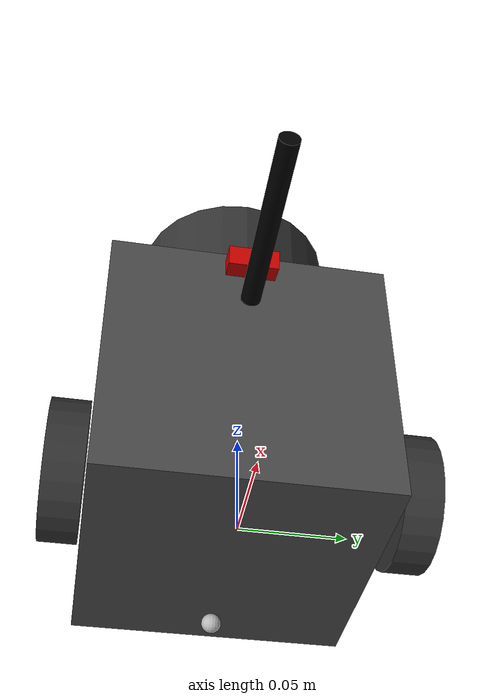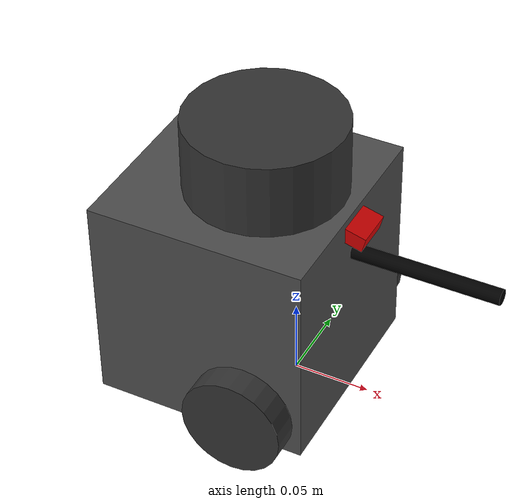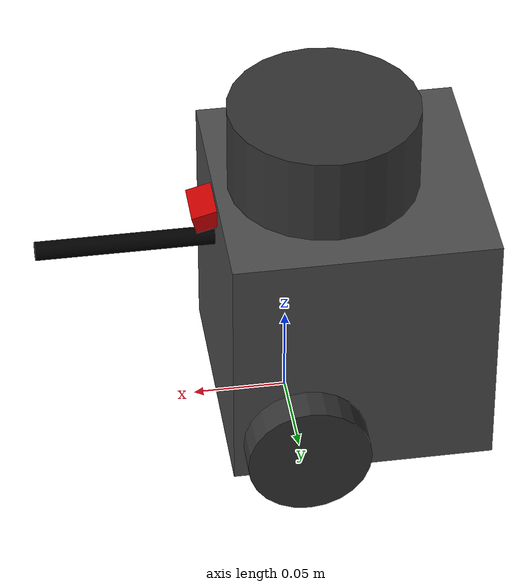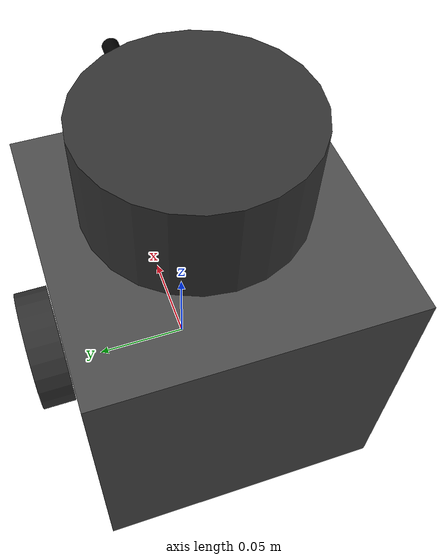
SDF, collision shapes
<?xml version="1.0" ?>
<sdf version="1.8">
  <model name="burger_with_pole">
    <pose>0.0 0.0 0.0 0.0 0.0 0.0</pose>

    <link name="base_footprint"/>

    <link name="base_link">

      <inertial>
        <pose>-0.064 0 0.070 0 0 0</pose>
        <inertia>
          <ixx>1.9527e-02</ixx>
          <ixy>0</ixy>
          <ixz>0</ixz>
          <iyy>1.9527e-02</iyy>
          <iyz>0</iyz>
          <izz>1.9527e-02</izz>
        </inertia>
        <mass>8.2573504e-01</mass>
      </inertial>

      <collision name="base_collision">
        <pose>-0.032 0 0.070 0 0 0</pose>
        <geometry>
          <box>
            <size>0.14 0.14 0.14</size>
          </box>
        </geometry>
      </collision>

      <visual name="base_visual">
        <pose>-0.032 0 0 0 0 0</pose>
        <geometry>
          <mesh>
            <uri>model://turtlebot3_common/meshes/bases/burger_base.stl</uri>
            <scale>0.001 0.001 0.001</scale>
          </mesh>
        </geometry>
        <material>
          <ambient>0.3 0.3 0.3 1.0</ambient>
          <diffuse>0.3 0.3 0.3 1.0</diffuse>
        </material>
      </visual>
    </link>

    <link name="imu_link">
      <sensor name="tb3_imu" type="imu">
        <always_on>true</always_on>
        <update_rate>200</update_rate>
        <topic>imu</topic>
        <imu>
          <angular_velocity>
            <x>
              <noise type="gaussian">
                <mean>0.0</mean>
                <stddev>2e-4</stddev>
              </noise>
            </x>
            <y>
              <noise type="gaussian">
                <mean>0.0</mean>
                <stddev>2e-4</stddev>
              </noise>
            </y>
            <z>
              <noise type="gaussian">
                <mean>0.0</mean>
                <stddev>2e-4</stddev>
              </noise>
            </z>
          </angular_velocity>
          <linear_acceleration>
            <x>
              <noise type="gaussian">
                <mean>0.0</mean>
                <stddev>1.7e-2</stddev>
              </noise>
            </x>
            <y>
              <noise type="gaussian">
                <mean>0.0</mean>
                <stddev>1.7e-2</stddev>
              </noise>
            </y>
            <z>
              <noise type="gaussian">
                <mean>0.0</mean>
                <stddev>1.7e-2</stddev>
              </noise>
            </z>
          </linear_acceleration>
        </imu>
      </sensor>
    </link>

    <link name="base_scan">
      <inertial>
        <pose>-0.020 0 0.161 0 0 0</pose>
        <inertia>
          <ixx>0.0001</ixx>
          <ixy>0.000</ixy>
          <ixz>0.000</ixz>
          <iyy>0.0001</iyy>
          <iyz>0.000</iyz>
          <izz>0.0001</izz>
        </inertia>
        <mass>0.114</mass>
      </inertial>

      <collision name="lidar_sensor_collision">
        <pose>-0.020 0 0.161 0 0 0</pose>
        <geometry>
          <cylinder>
            <radius>0.0508</radius>
            <length>0.055</length>
          </cylinder>
        </geometry>
      </collision>

      <visual name="lidar_sensor_visual">
        <pose>-0.032 0 0.171 0 0 0</pose>
        <geometry>
          <mesh>
            <uri>model://turtlebot3_common/meshes/sensors/lds.stl</uri>
            <scale>0.001 0.001 0.001</scale>
          </mesh>
        </geometry>
        <material>
          <ambient>0.2 0.2 0.2 1.0</ambient>
          <diffuse>0.2 0.2 0.2 1.0</diffuse>
        </material>
      </visual>

      <sensor name="hls_lfcd_lds" type="gpu_lidar">
        <always_on>true</always_on>
        <visualize>true</visualize>
        <pose>-0.032 0 0.171 0 0 0</pose>
        <update_rate>5</update_rate>
        <topic>scan</topic>
        <gz_frame_id>base_scan</gz_frame_id>
        <lidar>
          <scan>
            <horizontal>
              <samples>360</samples>
              <resolution>1.000000</resolution>
              <min_angle>0.000000</min_angle>
              <max_angle>6.280000</max_angle>
            </horizontal>
          </scan>
          <range>
            <min>0.120000</min>
            <max>3.5</max>
            <resolution>0.015000</resolution>
          </range>
          <noise>
            <type>gaussian</type>
            <mean>0.0</mean>
            <stddev>0.01</stddev>
          </noise>
        </lidar>
      </sensor>
    </link>

    <link name="wheel_left_link">

      <inertial>
        <pose>0 0.08 0.023 -1.57 0 0</pose>
        <inertia>
          <ixx>5.445e-05</ixx>
          <ixy>0</ixy>
          <ixz>0</ixz>
          <iyy>5.445e-05</iyy>
          <iyz>0</iyz>
          <izz>1.089e-04</izz>
        </inertia>
        <mass>0.1</mass>
      </inertial>

      <collision name="wheel_left_collision">
        <pose>0 0.08 0.023 -1.57 0 0</pose>
        <geometry>
          <cylinder>
            <radius>0.033</radius>
            <length>0.018</length>
          </cylinder>
        </geometry>
        <surface>
          <!-- This friction pamareter don't contain reliable data!! -->
          <friction>
            <ode>
              <mu>100000.0</mu>
              <mu2>100000.0</mu2>
              <fdir1>0 0 0</fdir1>
              <slip1>0.0</slip1>
              <slip2>0.0</slip2>
            </ode>
          </friction>
          <contact>
            <ode>
              <soft_cfm>0</soft_cfm>
              <soft_erp>0.2</soft_erp>
              <kp>1e+5</kp>
              <kd>1</kd>
              <max_vel>0.01</max_vel>
              <min_depth>0.001</min_depth>
            </ode>
          </contact>
        </surface>
      </collision>

      <visual name="wheel_left_visual">
        <pose>0 0.08 0.023 0 0 0</pose>
        <geometry>
          <mesh>
            <uri>model://turtlebot3_common/meshes/wheels/left_tire.stl</uri>
            <scale>0.001 0.001 0.001</scale>
          </mesh>
        </geometry>
        <material>
          <ambient>0.2 0.2 0.2 1.0</ambient>
          <diffuse>0.2 0.2 0.2 1.0</diffuse>
        </material>
      </visual>
    </link>

    <link name="wheel_right_link">

      <inertial>
        <pose>0.0 -0.08 0.023 -1.57 0 0</pose>
        <inertia>
          <ixx>5.445e-05</ixx>
          <ixy>0</ixy>
          <ixz>0</ixz>
          <iyy>5.445e-05</iyy>
          <iyz>0</iyz>
          <izz>1.089e-04</izz>
        </inertia>
        <mass>0.1</mass>
      </inertial>

      <collision name="wheel_right_collision">
        <pose>0.0 -0.08 0.023 -1.57 0 0</pose>
        <geometry>
          <cylinder>
            <radius>0.033</radius>
            <length>0.018</length>
          </cylinder>
        </geometry>
        <surface>
          <!-- This friction pamareter don't contain reliable data!! -->
          <friction>
            <ode>
              <mu>100000.0</mu>
              <mu2>100000.0</mu2>
              <fdir1>0 0 0</fdir1>
              <slip1>0.0</slip1>
              <slip2>0.0</slip2>
            </ode>
          </friction>
          <contact>
            <ode>
              <soft_cfm>0</soft_cfm>
              <soft_erp>0.2</soft_erp>
              <kp>1e+5</kp>
              <kd>1</kd>
              <max_vel>0.01</max_vel>
              <min_depth>0.001</min_depth>
            </ode>
          </contact>
        </surface>
      </collision>

      <visual name="wheel_right_visual">
        <pose>0.0 -0.08 0.023 0 0 0</pose>
        <geometry>
          <mesh>
            <uri>model://turtlebot3_common/meshes/wheels/right_tire.stl</uri>
            <scale>0.001 0.001 0.001</scale>
          </mesh>
        </geometry>
        <material>
          <ambient>0.2 0.2 0.2 1.0</ambient>
          <diffuse>0.2 0.2 0.2 1.0</diffuse>
        </material>
      </visual>
    </link>

    <link name='caster_back_link'>
      <pose>-0.081 0 -0.004 -1.57 0 0</pose>
      <inertial>
        <mass>0.005</mass>
        <inertia>
          <ixx>0.00001</ixx>
          <ixy>0.000</ixy>
          <ixz>0.000</ixz>
          <iyy>0.00001</iyy>
          <iyz>0.000</iyz>
          <izz>0.00001</izz>
        </inertia>
      </inertial>
      <collision name='collision'>
        <geometry>
          <sphere>
            <radius>0.005000</radius>
          </sphere>
        </geometry>
        <surface>
          <contact>
            <ode>
              <soft_cfm>0</soft_cfm>
              <soft_erp>0.2</soft_erp>
              <kp>1e+5</kp>
              <kd>1</kd>
              <max_vel>0.01</max_vel>
              <min_depth>0.001</min_depth>
            </ode>
          </contact>
        </surface>
      </collision>
    </link>

    <joint name="base_joint" type="fixed">
      <parent>base_footprint</parent>
      <child>base_link</child>
      <pose>0.0 0.0 0.010 0 0 0</pose>
    </joint>

    <joint name="wheel_left_joint" type="revolute">
      <parent>base_link</parent>
      <child>wheel_left_link</child>
      <pose>0.0 0.08 0.023 -1.57 0 0</pose>
      <axis>
        <xyz>0 0 1</xyz>
        <limit>
          <effort>20</effort>
        </limit>
      </axis>
    </joint>

    <joint name="wheel_right_joint" type="revolute">
      <parent>base_link</parent>
      <child>wheel_right_link</child>
      <pose>0.0 -0.08 0.023 -1.57 0 0</pose>
      <axis>
        <xyz>0 0 1</xyz>
        <limit>
          <effort>20</effort>
        </limit>
      </axis>
    </joint>

    <joint name='caster_back_joint' type='ball'>
      <parent>base_link</parent>
      <child>caster_back_link</child>
    </joint>

    <joint name="imu_joint" type="fixed">
      <parent>base_link</parent>
      <child>imu_link</child>
      <pose>-0.032 0 0.068 0 0 0</pose>
      <axis>
        <xyz>0 0 1</xyz>
      </axis>
    </joint>

    <joint name="lidar_joint" type="fixed">
      <parent>base_link</parent>
      <child>base_scan</child>
      <pose>-0.032 0 0.171 0 0 0</pose>
      <axis>
        <xyz>0 0 1</xyz>
      </axis>
    </joint>

    <!-- 추가: 막대기 (벨 누름용) -->
    <link name="pole_link">
      <pose>0.083 0 0.110 0 1.5708 0</pose>
      <inertial>
        <mass>0.01</mass>
        <inertia>
          <ixx>1.9e-05</ixx>
          <ixy>0</ixy>
          <ixz>0</ixz>
          <iyy>1.9e-05</iyy>
          <iyz>0</iyz>
          <izz>1.25e-07</izz>
        </inertia>
      </inertial>
      <collision name="pole_collision">
        <geometry>
          <cylinder>
            <radius>0.005</radius>
            <length>0.10</length>
          </cylinder>
        </geometry>
      </collision>
      <visual name="pole_visual">
        <geometry>
          <cylinder>
            <radius>0.005</radius>
            <length>0.10</length>
          </cylinder>
        </geometry>
        <material>
          <ambient>0.0 0.0 0.0 1.0</ambient>
          <diffuse>0.0 0.0 0.0 1.0</diffuse>
        </material>
      </visual>
    </link>

    <joint name="pole_joint" type="fixed">
      <parent>base_link</parent>
      <child>pole_link</child>
    </joint>

    <!-- 추가: 카메라 -->
    <link name="camera_link">
      <pose>0.038 0 0.130 0 0.2618 0</pose>
      <inertial>
        <mass>0.01</mass>
        <inertia>
          <ixx>1e-06</ixx>
          <ixy>0</ixy>
          <ixz>0</ixz>
          <iyy>1e-06</iyy>
          <iyz>0</iyz>
          <izz>1e-06</izz>
        </inertia>
      </inertial>
      <collision name="camera_collision">
        <geometry>
          <box>
            <size>0.025 0.025 0.010</size>
          </box>
        </geometry>
      </collision>
      <visual name="camera_visual">
        <geometry>
          <box>
            <size>0.025 0.025 0.010</size>
          </box>
        </geometry>
        <material>
          <ambient>0.8 0.0 0.0 1.0</ambient>
          <diffuse>0.8 0.0 0.0 1.0</diffuse>
        </material>
      </visual>

      <sensor name="camera" type="camera">
        <always_on>true</always_on>
        <update_rate>30</update_rate>
        <visualize>true</visualize>
        <topic>camera/image_raw</topic>
        <gz_frame_id>camera_link</gz_frame_id>
        <camera>
          <horizontal_fov>1.047</horizontal_fov>
          <image>
            <width>640</width>
            <height>480</height>
            <format>R8G8B8</format>
          </image>
          <clip>
            <near>0.05</near>
            <far>8.0</far>
          </clip>
        </camera>
      </sensor>
    </link>

    <joint name="camera_joint" type="fixed">
      <parent>base_link</parent>
      <child>camera_link</child>
    </joint>

    <plugin filename="gz-sim-diff-drive-system" name="gz::sim::systems::DiffDrive">

      <!-- wheels -->
      <left_joint>wheel_left_joint</left_joint>
      <right_joint>wheel_right_joint</right_joint>

      <!-- kinematics -->
      <wheel_separation>0.160</wheel_separation>
      <wheel_radius>0.033</wheel_radius>

      <!-- limits -->
      <max_linear_acceleration>1.0</max_linear_acceleration>

      <topic>cmd_vel</topic>

      <odom_topic>odom</odom_topic>
      <frame_id>odom</frame_id>
      <child_frame_id>base_footprint</child_frame_id>
      <odom_publisher_frequency>30</odom_publisher_frequency>

      <tf_topic>/tf</tf_topic>

    </plugin>

    <plugin filename="gz-sim-joint-state-publisher-system" name="gz::sim::systems::JointStatePublisher">
      <topic>joint_states</topic>
      <joint_name>wheel_left_joint</joint_name>
      <joint_name>wheel_right_joint</joint_name>
    </plugin>

  </model>
</sdf>
